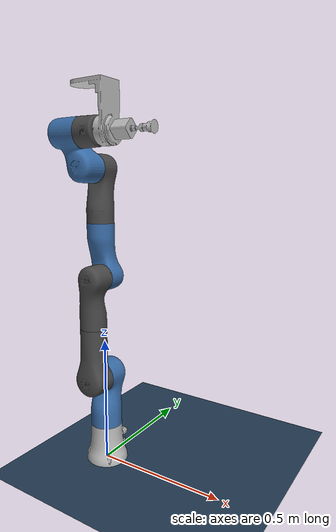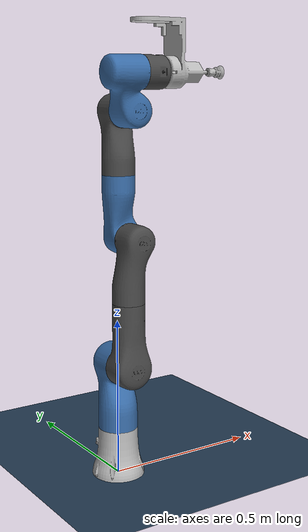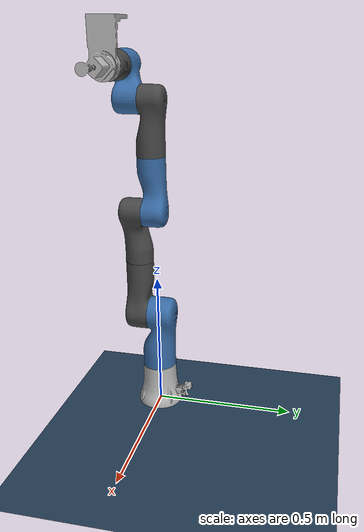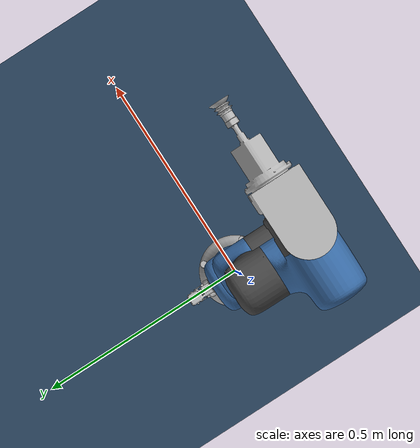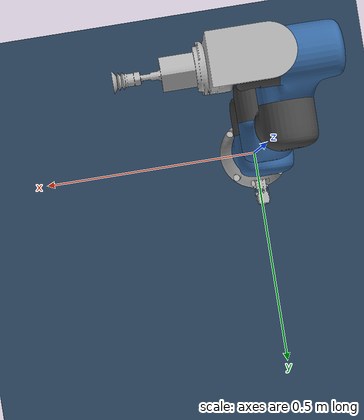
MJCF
<?xml version="1.0" ?>
<!--
  scene.xml — MuJoCo scene/background file.
  Provides ground plane, skybox, lights, and a default camera, then
  includes the robot model file generated from CSV.
-->
<mujoco model="A02L-MP4-HT_scene">

  <include file="A02L-MP4-HT_defeature.xml"/>

  <statistic center="0 0 0.4" extent="1.2" meansize="0.05"/>

  <visual>
    <headlight diffuse="0.6 0.6 0.6" ambient="0.3 0.3 0.3" specular="0 0 0"/>
    <rgba haze="0.15 0.25 0.35 1"/>
    <global azimuth="140" elevation="-20" offwidth="1280" offheight="720"/>
    <quality shadowsize="4096"/>
    <map force="0.1" zfar="30"/>
  </visual>

  <asset>
    <texture type="skybox" builtin="gradient"
             rgb1="0.3 0.5 0.7" rgb2="0 0 0"
             width="512" height="3072"/>
    <texture type="2d" name="groundplane" builtin="checker" mark="edge"
             rgb1="0.2 0.3 0.4" rgb2="0.1 0.2 0.3" markrgb="0.8 0.8 0.8"
             width="300" height="300"/>
    <material name="groundplane" texture="groundplane"
              texuniform="true" texrepeat="5 5" reflectance="0.2"/>
  </asset>

  <worldbody>
    <light name="sunlight" directional="true" pos="1.5 -1.5 3.0"
      diffuse="0.35 0.35 0.35" specular="0.1 0.1 0.1" castshadow="true" />

    <light name="sky_ambient" directional="true" pos="0 0 1"
      diffuse="0.1 0.1 0.1" ambient="0.15 0.15 0.15" castshadow="false" />

    <geom name="floor" type="plane" size="0 0 0.05"
      material="groundplane" condim="3" />

    <camera name="front"   pos="1.6  0.0  0.6" xyaxes="0 -1 0  0 0 1"/>
    <camera name="side"    pos="0.0  1.6  0.6" xyaxes="1  0 0  0 0 1"/>
    <camera name="iso"     pos="1.2 -1.2  1.2" xyaxes="0.7 0.7 0  -0.4 0.4 0.8"/>
  </worldbody>

</mujoco>

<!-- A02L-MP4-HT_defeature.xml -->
<mujoco model="A02L-MP4-HT_defeature">
  <compiler angle="radian" meshdir="meshes/" autolimits="true"/>
  <option integrator="implicitfast"/>
  <default>
    <joint damping="0.1" armature="0.01"/>
    <geom contype="1" conaffinity="1"/>
  </default>
  <asset>

    <material name="black"     rgba="0.033 0.033 0.033 1" specular="0.1" shininess="0.1" reflectance="0"/>
    <material name="jointgray" rgba="0.278 0.278 0.278 1" specular="0.1" shininess="0.1" reflectance="0"/>
    <material name="linkgray"  rgba="0.72 0.72 0.72 1"   specular="0.15" shininess="0.12" reflectance="0"/>
    <material name="urblue"    rgba="0.22 0.42 0.65 1"   specular="0.15" shininess="0.12" reflectance="0"/>

    <mesh name="base_link" file="base_link.STL"/>
    <mesh name="link_1" file="link_1.STL"/>
    <mesh name="link_2" file="link_2.STL"/>
    <mesh name="link_3" file="link_3.STL"/>
    <mesh name="link_4" file="link_4.STL"/>
    <mesh name="link_5" file="link_5.STL"/>
    <mesh name="link_6" file="link_6.STL"/>
    <mesh name="link_7" file="link_7.STL"/>
    <mesh name="tool_link" file="tool_link.STL"/>
  </asset>
  <worldbody>
    <light pos="0 0 3" dir="0 0 -1" diffuse="0.8 0.8 0.8"/>
    <body name="base_link" pos="0 0 0">
      <inertial pos="9.543221631e-05 0.0006061456325 0.06887505259" mass="2.274218077" fullinertia="0.007538392306 0.007363481039 0.005679315086 -6.453638398e-08 1.0819055e-05 -4.863869237e-06"/>
      <geom name="base_link_visual" type="mesh" mesh="base_link" contype="0" conaffinity="0" group="1" material="linkgray"/>
      <geom name="base_link_collision" type="mesh" mesh="base_link" group="3" rgba="0.5 0.6 0.7 0.3"/>
      <body name="link_1" pos="-0.00016498 4.6712e-05 0.1542">
        <inertial pos="2.651219785e-07 0.008742930967 0.1260948085" mass="2.714529976" fullinertia="0.01851678442 0.01879451818 0.004730990867 2.145269071e-08 8.338510135e-08 -0.001398144691"/>
        <joint name="joint_1" type="hinge" pos="0 0 0" axis="0 0 -1" range="-3.14 3.14" limited="true"/>
        <geom name="link_1_visual" type="mesh" mesh="link_1" contype="0" conaffinity="0" group="1" material="urblue"/>
        <geom name="link_1_collision" type="mesh" mesh="link_1" group="3" rgba="0.5 0.6 0.7 0.3"/>
        <body name="link_2" pos="0.00037978 -0.0297 0.2104" euler="1.5708 0 0">
          <inertial pos="1.323206707e-07 0.06960504076 0.03925760995" mass="2.149136276" fullinertia="0.01327908992 0.002990029592 0.01369768894 -2.554995531e-08 5.169179882e-09 0.0004500972948"/>
          <joint name="joint_2" type="hinge" pos="0 0 0" axis="0 0 1" range="-3.14 3.14" limited="true"/>
          <geom name="link_2_visual" type="mesh" mesh="link_2" contype="0" conaffinity="0" group="1" material="jointgray"/>
          <geom name="link_2_collision" type="mesh" mesh="link_2" group="3" rgba="0.5 0.6 0.7 0.3"/>
          <body name="link_3" pos="-1.1281e-05 0.2047 0.034739" euler="-1.5708 0 0">
            <inertial pos="0.008051259662 -0.007108167229 0.115630035" mass="1.67843166" fullinertia="0.008950096072 0.009109785103 0.002130424236 7.209241995e-05 -0.0009260252905 0.0005631648847"/>
            <joint name="joint_3" type="hinge" pos="0 0 0" axis="0 0 1" range="-3.14 3.14" limited="true"/>
            <geom name="link_3_visual" type="mesh" mesh="link_3" contype="0" conaffinity="0" group="1" material="jointgray"/>
            <geom name="link_3_collision" type="mesh" mesh="link_3" group="3" rgba="0.5 0.6 0.7 0.3"/>
            <body name="link_4" pos="0.020002 0.0297 0.19" euler="-1.5708 0 0">
              <inertial pos="-0.01230248323 -0.07778344818 0.03260465739" mass="1.678402124" fullinertia="0.009148650296 0.002111202132 0.009322505525 -0.0009260030928 -8.654658792e-05 -0.0006686534937"/>
              <joint name="joint_4" type="hinge" pos="0 0 0" axis="0 0 1" range="-3.14 3.14" limited="true"/>
              <geom name="link_4_visual" type="mesh" mesh="link_4" contype="0" conaffinity="0" group="1" material="urblue"/>
              <geom name="link_4_collision" type="mesh" mesh="link_4" group="3" rgba="0.5 0.6 0.7 0.3"/>
              <body name="link_5" pos="-0.019966 -0.1947 0.024952" euler="1.5708 0 0">
                <inertial pos="-1.281852936e-07 0.006291647944 0.1142985949" mass="1.654733663" fullinertia="0.008767201966 0.008836680096 0.001942832868 1.54794339e-08 1.773652218e-08 -0.0004969161613"/>
                <joint name="joint_5" type="hinge" pos="0 0 0" axis="0 0 1" range="-3.14 3.14" limited="true"/>
                <geom name="link_5_visual" type="mesh" mesh="link_5" contype="0" conaffinity="0" group="1" material="jointgray"/>
                <geom name="link_5_collision" type="mesh" mesh="link_5" group="3" rgba="0.5 0.6 0.7 0.3"/>
                <body name="link_6" pos="2.6809e-05 -0.0297 0.19032" euler="1.5708 0 0">
                  <inertial pos="-0.02553005347 0.06041041027 0.05867688268" mass="1.783334073" fullinertia="0.007210337065 0.003691939381 0.007913825475 0.001846956831 0.0004879835232 -0.001226913531"/>
                  <joint name="joint_6" type="hinge" pos="0 0 0" axis="0 0 1" range="-3.14 3.14" limited="true"/>
                  <geom name="link_6_visual" type="mesh" mesh="link_6" contype="0" conaffinity="0" group="1" material="urblue"/>
                  <geom name="link_6_collision" type="mesh" mesh="link_6" group="3" rgba="0.5 0.6 0.7 0.3"/>
                  <body name="link_7" pos="0.0147 0.11 0.073" euler="0 1.5708 1.5708">
                    <inertial pos="-7.263636391e-05 1.716953037e-05 0.0379790808" mass="0.5807109786" fullinertia="0.0006301798988 0.0006316037531 0.0006838989933 4.907735119e-09 2.837743739e-07 -6.974942754e-08"/>
                    <joint name="joint_7" type="hinge" pos="0 0 0" axis="0 0 1" range="-3.14 3.14" limited="true"/>
                    <geom name="link_7_visual" type="mesh" mesh="link_7" contype="0" conaffinity="0" group="1" material="jointgray"/>
                    <geom name="link_7_collision" type="mesh" mesh="link_7" group="3" rgba="0.5 0.6 0.7 0.3"/>
                    <body name="tool_link" pos="0 0 0.081">
                      <inertial pos="0.04349784605 -4.744561468e-05 0.03364489909" mass="0.787892588" fullinertia="0.000830335702 0.0009963124001 0.0009509746819 1.005221673e-05 1.304931258e-06 5.215916772e-07"/>
                      <geom name="tool_link_visual" type="mesh" mesh="tool_link" contype="0" conaffinity="0" group="1" material="linkgray"/>
                      <geom name="tool_link_collision" type="mesh" mesh="tool_link" group="3" rgba="0.5 0.6 0.7 0.3"/>
                    </body>
                  </body>
                </body>
              </body>
            </body>
          </body>
        </body>
      </body>
    </body>
  </worldbody>
  <actuator>
    <motor name="joint_1_motor" joint="joint_1" gear="1" ctrlrange="-300 300" ctrllimited="true"/>
    <motor name="joint_2_motor" joint="joint_2" gear="1" ctrlrange="-300 300" ctrllimited="true"/>
    <motor name="joint_3_motor" joint="joint_3" gear="1" ctrlrange="-300 300" ctrllimited="true"/>
    <motor name="joint_4_motor" joint="joint_4" gear="1" ctrlrange="-300 300" ctrllimited="true"/>
    <motor name="joint_5_motor" joint="joint_5" gear="1" ctrlrange="-300 300" ctrllimited="true"/>
    <motor name="joint_6_motor" joint="joint_6" gear="1" ctrlrange="-200 200" ctrllimited="true"/>
    <motor name="joint_7_motor" joint="joint_7" gear="1" ctrlrange="-200 200" ctrllimited="true"/>
  </actuator>
</mujoco>
